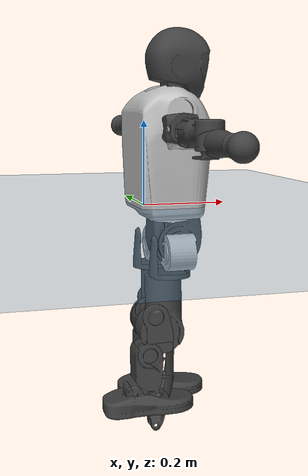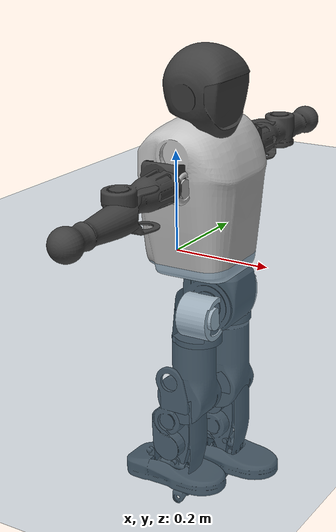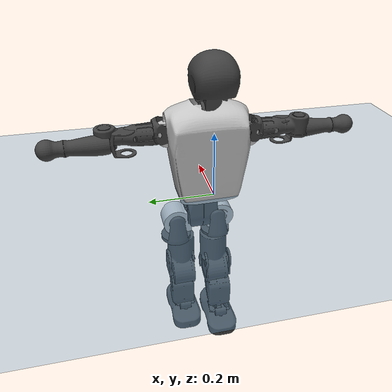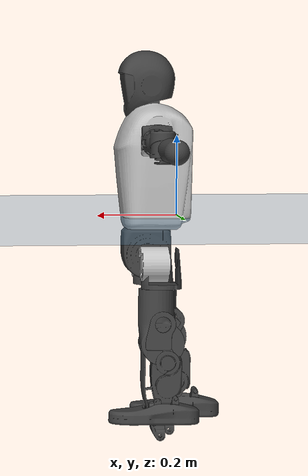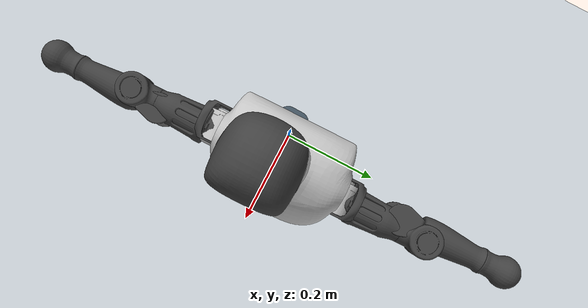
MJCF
<mujoco model="T1">
  <compiler angle="radian" assetdir="assets" balanceinertia="true" inertiafromgeom="false"/>

  <option timestep="0.005" density="1.2" viscosity="2e-05"/>

  <size nkey="1"/>

  <visual>
    <quality shadowsize="8192"/>
    <map shadowclip="0.5"/>
  </visual>

  <default>
    <default class="/">
      <joint armature="0.01" damping="0.01" frictionloss="0.1"/>
      <geom contype="0" conaffinity="0" group="1" solref="-1000 -80"/>
      <site size="0.01 0.005 0.005" group="5"/>
      <general forcelimited="true" biastype="affine" gainprm="25" biasprm="0 -25 -0.6"/>
      <default class="t1">
        <geom rgba="0.25 0.25 0.25 1"/>
        <default class="visual">
          <geom type="mesh" group="2"/>
        </default>
        <default class="collision">
          <geom group="3"/>
        </default>
        <default class="foot">
          <geom size="0.1115 0.05 0.015" type="box" condim="6" group="4" priority="1" solimp="0.015 1 0.015"/>
        </default>
        <default class="reward_collision_sphere">
          <geom group="5" rgba="1 0 0 1"/>
        </default>
      </default>
    </default>
  </default>

  <asset>
    <texture type="skybox" colorspace="auto" name="//unnamed_texture_0" builtin="gradient" rgb1="0.95 0.95 0.95" rgb2="0.95 0.95 0.95" width="100" height="600"/>
    <texture type="2d" colorspace="auto" name="texplane" builtin="checker" rgb1="0.345 0.575 0.748" rgb2="0.345 0.575 0.748" markrgb="1 1 1" width="512" height="512"/>
    <material name="MatPlane" class="/" texture="texplane" texuniform="true" texrepeat="2 2" specular="0.9"/>
    <mesh name="Trunk" class="/" file="Trunk.stl"/>
    <mesh name="H1" class="/" file="H1.stl"/>
    <mesh name="H2" class="/" file="H2.stl"/>
    <mesh name="AL1" class="/" file="AL1.stl"/>
    <mesh name="AL2" class="/" file="AL2.stl"/>
    <mesh name="AL3" class="/" file="AL3.stl"/>
    <mesh name="left_hand_link" class="/" file="left_hand_link.stl"/>
    <mesh name="AR1" class="/" file="AR1.stl"/>
    <mesh name="AR2" class="/" file="AR2.stl"/>
    <mesh name="AR3" class="/" file="AR3.stl"/>
    <mesh name="right_hand_link" class="/" file="right_hand_link.stl"/>
    <mesh name="Waist" class="/" file="Waist.stl"/>
    <mesh name="Hip_Pitch_Left" class="/" file="Hip_Pitch_Left.stl"/>
    <mesh name="Hip_Roll_Left" class="/" file="Hip_Roll_Left.stl"/>
    <mesh name="Hip_Yaw_Left" class="/" file="Hip_Yaw_Left.stl"/>
    <mesh name="Shank_Left" class="/" file="Shank_Left.stl"/>
    <mesh name="Ankle_Cross_Left" class="/" file="Ankle_Cross_Left.stl"/>
    <mesh name="left_foot_link" class="/" file="left_foot_link.stl"/>
    <mesh name="Hip_Pitch_Right" class="/" file="Hip_Pitch_Right.stl"/>
    <mesh name="Hip_Roll_Right" class="/" file="Hip_Roll_Right.stl"/>
    <mesh name="Hip_Yaw_Right" class="/" file="Hip_Yaw_Right.stl"/>
    <mesh name="Shank_Right" class="/" file="Shank_Right.stl"/>
    <mesh name="Ankle_Cross_Right" class="/" file="Ankle_Cross_Right.stl"/>
    <mesh name="right_foot_link" class="/" file="right_foot_link.stl"/>
  </asset>

  <worldbody>
    <geom name="floor" class="/" size="100 100 0.125" type="plane" group="0" material="MatPlane"/>
    <light name="toplight_shadow" class="/" pos="0 0 5" dir="0.0990148 0.0990148 -0.990148" type="directional" ambient="0.04 0.04 0.04" diffuse="0.55 0.55 0.55" specular="0.12 0.12 0.12"/>
    <light name="toplight_fill" class="/" pos="0 0 5" dir="0.0990148 0.0990148 -0.990148" type="directional" castshadow="false" ambient="0.04 0.04 0.04" diffuse="0.3 0.3 0.3" specular="0.08 0.08 0.08"/>
    <body name="trunk" childclass="t1" pos="0.00361952 0.0107414 0.002755" quat="0.999966 0.00035784 -0.00407529 0.00718684">
      <inertial pos="0.070182 0.01441 0.0892112" quat="0.999831 0.0135967 -0.000894511 0.012301" mass="7.35554" diaginertia="0.104577 0.0148834 0.0153955"/>
      <joint name="//unnamed_joint_0" type="free" armature="0" damping="0" frictionloss="0"/>
      <geom name="//unnamed_geom_1" class="visual" rgba="0.76 0.76 0.76 1" mesh="Trunk"/>
      <geom name="//unnamed_geom_2" class="collision" size="0.0620201 0.0826935 0.12404" pos="0.0612638 0 0.0900609" type="box"/>
      <geom name="//unnamed_geom_3" class="reward_collision_sphere" size="0.0950975" pos="0.0612638 0 0.0750508"/>
      <geom name="//unnamed_geom_4" class="reward_collision_sphere" size="0.012404" pos="0.0612638 0.0602849 0"/>
      <geom name="//unnamed_geom_5" class="reward_collision_sphere" size="0.012404" pos="0.0612638 -0.0602849 0"/>
      <geom name="//unnamed_geom_6" class="reward_collision_sphere" size="0.012404" pos="0.0612638 0.075888 0.135091"/>
      <geom name="//unnamed_geom_7" class="reward_collision_sphere" size="0.012404" pos="0.0612638 -0.075888 0.135091"/>
      <site name="imu" pos="-0.0650052 -0.0348085 0.0651591" size="0.00826935"/>
      <camera name="track" pos="0 -1.41847 0" quat="0.707107 0.707107 0 0" mode="trackcom"/>
      <camera name="ego_camera" pos="0.12457 0 0.315213" quat="-0.5 -0.5 0.5 0.5"/>
      <body name="H1" pos="0.0727242 -0.010467 0.174806" quat="0.999989 0.00406755 0.00208215 -0.0013726">
        <inertial pos="0.010756 -0.0183256 0.0328641" quat="0.732138 -0.0769059 0.0264519 0.676283" mass="0.257241" diaginertia="0.000276543 4.3876e-05 5.09107e-05"/>
        <joint name="AAHead_yaw" pos="0 0 0" axis="-0.058063 0.0577927 0.996639" range="-1.41545 1.69153" armature="0.0128483" damping="0" frictionloss="0.0887547"/>
        <geom name="//unnamed_geom_8" class="visual" mesh="H1"/>
        <body name="H2" pos="-0.0127518 -0.0166972 0.0458385" quat="0.999996 0.00296714 -0.000276316 -0.00020888">
          <inertial pos="0.00914787 -0.0149625 0.0766333" quat="0.991709 0.0953983 -0.0477647 -0.0716239" mass="0.369406" diaginertia="0.00192469 0.000327461 0.000427544"/>
          <joint name="Head_pitch" pos="0 0 0" axis="-0.0474817 -0.998857 0.00546644" range="-1.15824 0.351008" armature="0.0152333" damping="0" frictionloss="0.00588522"/>
          <geom name="//unnamed_geom_9" class="visual" mesh="H2"/>
          <geom name="//unnamed_geom_10" class="collision" size="0.0661548" pos="0.0102106 0 0.0825559"/>
          <geom name="//unnamed_geom_11" class="reward_collision_sphere" size="0.0744241" pos="0.0204213 0 0.0750508"/>
        </body>
      </body>
      <body name="AL1" pos="0.0686382 0.0713678 0.181487" quat="1 0.000150652 0.000619301 0.000149213">
        <inertial pos="0.0161989 0.0270487 0.00661504" quat="0.488828 0.492156 -0.52164 0.49671" mass="0.332039" diaginertia="0.00158425 0.000251622 8.77721e-05"/>
        <joint name="Left_Shoulder_Pitch" pos="0 0 0" axis="-0.0755113 0.9964 -0.0385348" range="-3.34636 1.43708" armature="0.0106894" damping="0" frictionloss="0.0737806"/>
        <geom name="//unnamed_geom_12" class="visual" rgba="0.76 0.76 0.76 1" mesh="AL1"/>
        <body name="AL2" pos="-0.00494429 0.0295637 0.0130945" quat="1 -7.45115e-05 0.000136228 -4.12309e-05">
          <inertial pos="-0.0069808 0.0377927 0.0148577" quat="0.521862 0.472828 -0.523176 0.479979" mass="0.0773758" diaginertia="0.000434706 6.1192e-05 4.03161e-05"/>
          <joint name="Left_Shoulder_Roll" pos="0 0 0" axis="-0.998601 -0.0527902 0.00312543" range="-1.50737 1.6316" armature="0.00852756" damping="0.00657771" frictionloss="0.0913029"/>
          <geom name="//unnamed_geom_13" class="visual" mesh="AL2"/>
          <body name="AL3" pos="0.00566647 0.0432827 -0.00955543" quat="0.999998 0.00053644 0.000337955 0.00161229">
            <inertial pos="0.0116094 0.059165 -0.00514449" quat="0.670205 0.738773 0.0110845 -0.070124" mass="0.603768" diaginertia="0.0133563 0.00244316 0.00019615"/>
            <joint name="Left_Elbow_Pitch" pos="0 0 0" axis="-0.0186398 -0.999785 0.009051" range="-2.105 2.38598" armature="0.00880115" damping="0" frictionloss="0.0105593"/>
            <geom name="//unnamed_geom_14" class="visual" mesh="AL3"/>
            <geom name="//unnamed_geom_15" class="collision" size="0.024808 0.0620201" pos="0 0.0354617 0" quat="0.707105 0.707108 0 0" type="cylinder"/>
            <geom name="//unnamed_geom_16" class="reward_collision_sphere" size="0.0297697"/>
            <body name="left_hand_link" pos="-0.0154973 0.0918786 -0.0123849" quat="0.999995 -0.000312961 -0.00217962 -0.00218075">
              <inertial pos="-0.0157604 0.0906321 0.0155964" quat="0.695066 0.717906 0.0360213 -0.0140545" mass="0.180057" diaginertia="0.00889484 0.00134805 4.23583e-05"/>
              <joint name="Left_Elbow_Yaw" pos="0 0 0" axis="0.00253481 0.0224916 0.999744" stiffness="0.0510845" range="-2.46821 0.141626" armature="0.00261894" damping="0" frictionloss="0.0852817"/>
              <geom name="//unnamed_geom_17" class="visual" mesh="left_hand_link"/>
              <geom name="//unnamed_geom_18" class="collision" size="0.024808 0.0723568" pos="0 0.0922004 0" quat="0.707105 0.707108 0 0" type="cylinder"/>
              <geom name="//unnamed_geom_19" class="reward_collision_sphere" size="0.0413467"/>
              <geom name="//unnamed_geom_20" class="reward_collision_sphere" size="0.0289427" pos="0 0.0780157 0"/>
              <geom name="//unnamed_geom_21" class="reward_collision_sphere" size="0.0289427" pos="0 0.152485 0"/>
            </body>
          </body>
        </body>
      </body>
      <body name="AR1" pos="0.0564672 -0.0811631 0.165247" quat="0.999957 0.00847953 -0.000362421 -0.0037633">
        <inertial pos="0.000648008 -0.022332 -0.00988438" quat="0.508033 0.486694 -0.5126 0.492212" mass="0.23381" diaginertia="0.00140172 0.000192652 5.28195e-05"/>
        <joint name="Right_Shoulder_Pitch" pos="0 0 0" axis="0.0303401 -0.999317 0.0210836" range="-1.46757 3.27223" armature="0.0118265" damping="0.015131" frictionloss="0.124006"/>
        <geom name="//unnamed_geom_22" class="visual" rgba="0.76 0.76 0.76 1" mesh="AR1"/>
        <body name="AR2" pos="-0.00860645 -0.027024 0.0168453" quat="0.999973 0.000300641 -0.000383592 0.00731042">
          <inertial pos="0.0131814 -0.0359433 0.0081626" quat="0.474607 0.509645 -0.484882 0.529056" mass="0.105936" diaginertia="0.000517753 6.20976e-05 5.00618e-05"/>
          <joint name="Right_Shoulder_Roll" pos="0 0 0" axis="-0.998029 0.0443 -0.044453" stiffness="0.0627533" range="-1.53476 1.78092" armature="0.00789187" damping="0.0814961" frictionloss="0.10467"/>
          <geom name="//unnamed_geom_23" class="visual" mesh="AR2"/>
          <body name="AR3" pos="0.0119679 -0.040848 -0.0086541" quat="0.99997 -0.0046902 0.00443888 -0.00437215">
            <inertial pos="-0.0185211 -0.0641473 -0.00954667" quat="0.70505 0.70846 0.0308776 0.00589724" mass="0.540898" diaginertia="0.0100702 0.0019872 0.000130549"/>
            <joint name="Right_Elbow_Pitch" pos="0 0 0" axis="0.00772663 0.998396 0.0560868" stiffness="0.0301034" range="-2.08779 2.64855" armature="0.00606514" damping="0.00396933" frictionloss="0.0388149"/>
            <geom name="//unnamed_geom_24" class="visual" mesh="AR3"/>
            <geom name="//unnamed_geom_25" class="collision" size="0.024808 0.0620201" pos="0 -0.0354617 0" quat="0.707105 0.707108 0 0" type="cylinder"/>
            <geom name="//unnamed_geom_26" class="reward_collision_sphere" size="0.0297697"/>
            <body name="right_hand_link" pos="0.0106395 -0.091881 -0.0152347" quat="0.999973 -0.000432175 -0.00439224 -0.00585443">
              <inertial pos="-0.0174934 -0.0863335 0.0161857" quat="0.701813 0.712323 0.00404873 0.00617036" mass="0.204423" diaginertia="0.0137138 0.00206763 4.97438e-05"/>
              <joint name="Right_Elbow_Yaw" pos="0 0 0" axis="0.00750396 -0.00863136 0.999935" stiffness="0.0314385" range="-0.067787 2.75116" armature="0.0115362" damping="0" frictionloss="0.0776343"/>
              <geom name="//unnamed_geom_27" class="visual" mesh="right_hand_link"/>
              <geom name="//unnamed_geom_28" class="collision" size="0.024808 0.0723568" pos="0 -0.0922004 0" quat="0.707105 0.707108 0 0" type="cylinder"/>
              <geom name="//unnamed_geom_29" class="reward_collision_sphere" size="0.0413467"/>
              <geom name="//unnamed_geom_30" class="reward_collision_sphere" size="0.0289427" pos="0 -0.0780157 0"/>
              <geom name="//unnamed_geom_31" class="reward_collision_sphere" size="0.0289427" pos="0 -0.152485 0"/>
            </body>
          </body>
        </body>
      </body>
      <body name="Waist" pos="0.0766736 0.0158082 -0.0975868" quat="1 7.61523e-05 -0.000417684 -0.000389912">
        <inertial pos="-0.00456632 -0.0143408 0.0111517" quat="0.992283 -0.0207734 -0.12011 0.0227412" mass="1.99048" diaginertia="0.00753988 0.00124947 0.00152544"/>
        <joint name="Waist" pos="0 0 0" axis="-0.0119343 0.0428673 0.999009" stiffness="0.0488608" range="-1.36908 1.75923" armature="0.0068748" damping="0.0974487" frictionloss="0.0344992"/>
        <geom name="//unnamed_geom_32" class="visual" mesh="Waist"/>
        <body name="Hip_Pitch_Left" pos="-0.0116611 0.0832332 0.000216516" quat="0.999999 0.000681869 0.000814142 -0.000472477">
          <inertial pos="0.0104363 -0.0103829 0.00235761" quat="0.972881 0.226145 0.0283982 -0.0394229" mass="0.615556" diaginertia="0.00228338 0.000296071 0.000338221"/>
          <joint name="Left_Hip_Pitch" pos="0 0 0" axis="-0.00944941 0.998863 -0.046727" range="-1.92233 1.26301" armature="0.0118572" damping="0.0736988" frictionloss="0.070816"/>
          <geom name="//unnamed_geom_33" class="visual" rgba="0.76 0.76 0.76 1" mesh="Hip_Pitch_Left"/>
          <body name="Hip_Roll_Left" pos="-0.0160415 0.00353561 -0.0028424" quat="0.999997 0.00167175 -0.00107396 -0.00173326">
            <inertial pos="0.00800937 0.00051887 -0.025476" quat="0.714936 -0.0275264 -0.0158152 0.698469" mass="0.157284" diaginertia="0.00127804 0.000260413 0.000118665"/>
            <joint name="Left_Hip_Roll" pos="0 0 0" axis="-0.998765 -0.00972224 -0.0487226" stiffness="0.0801776" range="-1.37454 -0.129887" armature="0.00648608" damping="0" frictionloss="0.0619513"/>
            <geom name="//unnamed_geom_34" class="visual" mesh="Hip_Roll_Left"/>
            <geom name="//unnamed_geom_35" class="reward_collision_sphere" size="0.0454814"/>
            <body name="Hip_Yaw_Left" pos="0.0081678 -0.0169645 -0.0787251" quat="1 -1.17165e-05 -1.41473e-05 4.88916e-05">
              <inertial pos="0.00397431 0.00331638 -0.075882" quat="0.67665 0.0277121 -0.0679775 0.732636" mass="1.24997" diaginertia="0.0221168 0.00478333 0.000463327"/>
              <joint name="Left_Hip_Yaw" pos="0 0 0" axis="0.000536187 0.00541343 -0.999985" stiffness="0.00928269" range="-0.892427 0.632465" armature="0.00288508" damping="0.107508" frictionloss="0.0754409"/>
              <geom name="//unnamed_geom_36" class="visual" mesh="Hip_Yaw_Left"/>
              <geom name="//unnamed_geom_37" class="collision" size="0.0413467 0.0661548" type="cylinder"/>
              <body name="Shank_Left" pos="-0.0125759 0.00530889 -0.0847423" quat="0.999987 -0.00335345 -0.00317041 0.00229626">
                <inertial pos="-0.00623867 0.00400656 -0.0784265" quat="0.997006 -0.00720351 -0.0540811 0.0547933" mass="0.904338" diaginertia="0.0360268 0.00795102 0.000589338"/>
                <joint name="Left_Knee_Pitch" pos="0 0 0" axis="-0.00252962 0.999993 -0.00272554" range="-0.231751 2.31499" armature="0.00927125" damping="0.0443736" frictionloss="0.115829"/>
                <geom name="//unnamed_geom_38" class="visual" mesh="Shank_Left"/>
                <geom name="//unnamed_geom_39" class="collision" size="0.0413467 0.0620201" pos="0 0 -0.0900609" type="cylinder"/>
                <geom name="//unnamed_geom_40" class="reward_collision_sphere" size="0.0537508"/>
                <body name="Ankle_Cross_Left" pos="0.00744148 0.00611991 -0.196133" quat="0.999994 -0.00132527 -0.00211348 -0.00253251">
                  <inertial pos="0.0127548 -0.016544 -0.0059203" quat="0.440502 0.546345 0.557958 0.442886" mass="0.0473043" diaginertia="2.71658e-05 5.4728e-06 2.54356e-06"/>
                  <joint name="Left_Ankle_Pitch" pos="0 0 0" axis="0.057925 0.997296 0.0452198" range="-0.622323 0.209892" armature="0.0144961" damping="0" frictionloss="0.0348144"/>
                  <geom name="//unnamed_geom_41" class="visual" mesh="Ankle_Cross_Left"/>
                  <body name="left_foot_link" pos="-0.00272728 -0.0119452 -0.0234066" quat="0.999961 0.00771693 0.00413311 0.000917076">
                    <inertial pos="0.0162336 -0.00175922 0.00229218" quat="-0.0129816 0.586061 -0.0335029 0.80947" mass="0.468839" diaginertia="0.00269258 0.00041068 0.000448318"/>
                    <joint name="Left_Ankle_Roll" pos="0 0 0" axis="-0.999985 0.00374791 0.00394297" stiffness="0.0767654" range="-0.122173 0.773378" armature="0.00304238" damping="0.0179811" frictionloss="0.15028"/>
                    <geom name="//unnamed_geom_42" class="visual" mesh="left_foot_link"/>
                    <geom name="left_foot" class="foot" size="0.105574 0.0607292 0.0138894" pos="0.0102106 0 -0.0112576"/>
                    <geom name="//unnamed_geom_44" class="reward_collision_sphere" size="0.0430006" pos="0.0102106 0 -0.0112576"/>
                    <geom name="//unnamed_geom_45" class="reward_collision_sphere" size="0.024808" pos="0.097001 -0.0163124 -0.0112576"/>
                    <geom name="//unnamed_geom_46" class="reward_collision_sphere" size="0.024808" pos="-0.0714744 -0.0163124 -0.0112576"/>
                    <site name="left_foot" class="foot" pos="0.0102106 0 -0.0112576" size="0.00826935"/>
                  </body>
                </body>
              </body>
            </body>
          </body>
        </body>
        <body name="Hip_Pitch_Right" pos="-0.00471577 -0.0616015 0.000959083" quat="0.99997 -0.00580921 0.000114912 -0.00513284">
          <inertial pos="-0.00926463 0.0191753 -0.0255959" quat="0.967768 -0.251124 0.0183013 0.00512235" mass="0.563435" diaginertia="0.00185414 0.000195755 0.000265621"/>
          <joint name="Right_Hip_Pitch" pos="0 0 0" axis="-0.00304626 -0.999972 0.00687804" stiffness="0.0222225" range="-1.38925 1.69789" armature="0.00233273" damping="0" frictionloss="0.122913"/>
          <geom name="//unnamed_geom_47" class="visual" rgba="0.76 0.76 0.76 1" mesh="Hip_Pitch_Right"/>
          <body name="Hip_Roll_Right" pos="-0.0172577 0.0152836 -0.00306125" quat="0.999996 -0.00209203 0.00157193 -0.000989068">
            <inertial pos="-0.00740248 -0.00915029 -0.0536544" quat="0.713217 0.00893961 0.00131688 0.700885" mass="0.147609" diaginertia="0.00164359 0.000192206 0.000108132"/>
            <joint name="Right_Hip_Roll" pos="0 0 0" axis="-0.998785 -0.0446177 0.0209197" range="-0.217081 1.92607" armature="0.0064022" damping="0.0947138" frictionloss="0.153463"/>
            <geom name="//unnamed_geom_48" class="visual" mesh="Hip_Roll_Right"/>
            <geom name="//unnamed_geom_49" class="reward_collision_sphere" size="0.0454814"/>
            <body name="Hip_Yaw_Right" pos="-0.0167676 0.010439 -0.0731343" quat="0.999979 0.000233525 -0.00626565 0.00191914">
              <inertial pos="-0.00156473 0.0126047 -0.0796579" quat="0.747908 -0.0281555 -0.107498 0.654434" mass="1.09422" diaginertia="0.0353023 0.00392935 0.00076114"/>
              <joint name="Right_Hip_Yaw" pos="0 0 0" axis="-0.0671856 0.0618169 -0.995824" range="-0.966105 1.05566" armature="0.0147126" damping="0.0275908" frictionloss="0.063875"/>
              <geom name="//unnamed_geom_50" class="visual" mesh="Hip_Yaw_Right"/>
              <geom name="//unnamed_geom_51" class="collision" size="0.0413467 0.0661548" type="cylinder"/>
              <body name="Shank_Right" pos="-0.0312838 -0.00517582 -0.0933459" quat="0.999982 0.00351922 0.00119671 -0.00471563">
                <inertial pos="-0.0168939 -0.00348829 -0.0989785" quat="0.997579 0.0247617 0.0568418 -0.0315094" mass="1.27231" diaginertia="0.0358283 0.00718879 0.000444155"/>
                <joint name="Right_Knee_Pitch" pos="0 0 0" axis="0.00678102 -0.999953 0.00692539" stiffness="0.0870119" range="-2.30792 -0.253879" armature="0.00804456" damping="0" frictionloss="0.0992823"/>
                <geom name="//unnamed_geom_52" class="visual" mesh="Shank_Right"/>
                <geom name="//unnamed_geom_53" class="collision" size="0.0413467 0.0620201" pos="0 0 -0.0900609" type="cylinder"/>
                <geom name="//unnamed_geom_54" class="reward_collision_sphere" size="0.0537508"/>
                <body name="Ankle_Cross_Right" pos="-0.00823945 -0.00372598 -0.197572" quat="0.999971 0.00563963 0.000834218 -0.00513293">
                  <inertial pos="0.000718591 -0.0143176 -0.00368484" quat="0.44333 0.551041 0.550631 0.443416" mass="0.0407931" diaginertia="4.00602e-05 4.69623e-06 3.19211e-06"/>
                  <joint name="Right_Ankle_Pitch" pos="0 0 0" axis="-0.058562 -0.997905 -0.0274854" range="0.0232538 0.923776" armature="0.00748516" damping="0.00982995" frictionloss="0.106454"/>
                  <geom name="//unnamed_geom_55" class="visual" mesh="Ankle_Cross_Right"/>
                  <body name="right_foot_link" pos="-0.0141417 0.00444051 -0.0154056" quat="0.999999 -0.000684118 -0.00047974 -0.00127036">
                    <inertial pos="-0.00110638 -0.0143019 -0.00793432" quat="-0.0518034 0.617169 -0.0112079 0.785044" mass="0.241832" diaginertia="0.00266603 0.000344599 0.000379162"/>
                    <joint name="Right_Ankle_Roll" pos="0 0 0" axis="-0.999316 0.0349248 0.0121446" range="-0.316976 0.669844" armature="0.00584113" damping="0.0110839" frictionloss="0.155131"/>
                    <geom name="//unnamed_geom_56" class="visual" mesh="right_foot_link"/>
                    <geom name="right_foot" class="foot" size="0.144534 0.0288816 0.0124863" pos="0.0102106 0 -0.0112576"/>
                    <geom name="//unnamed_geom_58" class="reward_collision_sphere" size="0.0330774"/>
                    <geom name="//unnamed_geom_59" class="reward_collision_sphere" size="0.024808" pos="0.0102106 0 -0.0112576"/>
                    <geom name="//unnamed_geom_60" class="reward_collision_sphere" size="0.024808" pos="0.097001 0.0163124 -0.0112576"/>
                    <geom name="//unnamed_geom_61" class="reward_collision_sphere" size="0.024808" pos="-0.0714744 0.0163124 -0.0112576"/>
                    <site name="right_foot" class="foot" pos="0.0102106 0 -0.0112576" size="0.00826935"/>
                  </body>
                </body>
              </body>
            </body>
          </body>
        </body>
      </body>
    </body>
  </worldbody>

  <contact>
    <pair class="/" geom1="floor" geom2="left_foot" name="//unnamed_contact_0"/>
    <pair class="/" geom1="floor" geom2="right_foot" name="//unnamed_contact_1"/>
  </contact>

  <actuator>
    <general name="AAHead_yaw" class="/" joint="AAHead_yaw" forcerange="-7.57848 7.57848" gainprm="29.8745" biasprm="0 -29.8745 -0.354746"/>
    <general name="Head_pitch" class="/" joint="Head_pitch" forcerange="-4.00248 4.00248" gainprm="29.8745" biasprm="0 -29.8745 -0.354746"/>
    <general name="Left_Shoulder_Pitch" class="/" joint="Left_Shoulder_Pitch" forcerange="-25.3299 25.3299" gainprm="29.8745" biasprm="0 -29.8745 -0.354746"/>
    <general name="Left_Shoulder_Roll" class="/" joint="Left_Shoulder_Roll" forcerange="-15.6698 15.6698" gainprm="29.8745" biasprm="0 -29.8745 -0.354746"/>
    <general name="Left_Elbow_Pitch" class="/" joint="Left_Elbow_Pitch" forcerange="-20.8468 20.8468" gainprm="29.8745" biasprm="0 -29.8745 -0.354746"/>
    <general name="Left_Elbow_Yaw" class="/" joint="Left_Elbow_Yaw" forcerange="-16.5723 16.5723" gainprm="29.8745" biasprm="0 -29.8745 -0.354746"/>
    <general name="Right_Shoulder_Pitch" class="/" joint="Right_Shoulder_Pitch" forcerange="-18.4835 18.4835" gainprm="29.8745" biasprm="0 -29.8745 -0.354746"/>
    <general name="Right_Shoulder_Roll" class="/" joint="Right_Shoulder_Roll" forcerange="-13.0932 13.0932" gainprm="29.8745" biasprm="0 -29.8745 -0.354746"/>
    <general name="Right_Elbow_Pitch" class="/" joint="Right_Elbow_Pitch" forcerange="-21.2336 21.2336" gainprm="29.8745" biasprm="0 -29.8745 -0.354746"/>
    <general name="Right_Elbow_Yaw" class="/" joint="Right_Elbow_Yaw" forcerange="-21.1698 21.1698" gainprm="29.8745" biasprm="0 -29.8745 -0.354746"/>
    <general name="Waist" class="/" joint="Waist" forcerange="-35.2218 35.2218" gainprm="29.8745" biasprm="0 -29.8745 -0.354746"/>
    <general name="Left_Hip_Pitch" class="/" joint="Left_Hip_Pitch" forcerange="-42.9957 42.9957" gainprm="29.8745" biasprm="0 -29.8745 -0.354746"/>
    <general name="Left_Hip_Roll" class="/" joint="Left_Hip_Roll" forcerange="-34.8958 34.8958" gainprm="29.8745" biasprm="0 -29.8745 -0.354746"/>
    <general name="Left_Hip_Yaw" class="/" joint="Left_Hip_Yaw" forcerange="-35.0695 35.0695" gainprm="29.8745" biasprm="0 -29.8745 -0.354746"/>
    <general name="Left_Knee_Pitch" class="/" joint="Left_Knee_Pitch" forcerange="-31.5859 31.5859" gainprm="29.8745" biasprm="0 -29.8745 -0.354746"/>
    <general name="Left_Ankle_Pitch" class="/" joint="Left_Ankle_Pitch" forcerange="-5.91737 5.91737" gainprm="29.8745" biasprm="0 -29.8745 -0.354746"/>
    <general name="Left_Ankle_Roll" class="/" joint="Left_Ankle_Roll" forcerange="-19.7686 19.7686" gainprm="29.8745" biasprm="0 -29.8745 -0.354746"/>
    <general name="Right_Hip_Pitch" class="/" joint="Right_Hip_Pitch" forcerange="-32.4675 32.4675" gainprm="29.8745" biasprm="0 -29.8745 -0.354746"/>
    <general name="Right_Hip_Roll" class="/" joint="Right_Hip_Roll" forcerange="-9.98351 9.98351" gainprm="29.8745" biasprm="0 -29.8745 -0.354746"/>
    <general name="Right_Hip_Yaw" class="/" joint="Right_Hip_Yaw" forcerange="-37.6436 37.6436" gainprm="29.8745" biasprm="0 -29.8745 -0.354746"/>
    <general name="Right_Knee_Pitch" class="/" joint="Right_Knee_Pitch" forcerange="-73.2187 73.2187" gainprm="29.8745" biasprm="0 -29.8745 -0.354746"/>
    <general name="Right_Ankle_Pitch" class="/" joint="Right_Ankle_Pitch" forcerange="-18.7165 18.7165" gainprm="29.8745" biasprm="0 -29.8745 -0.354746"/>
    <general name="Right_Ankle_Roll" class="/" joint="Right_Ankle_Roll" forcerange="-5.49578 5.49578" gainprm="29.8745" biasprm="0 -29.8745 -0.354746"/>
  </actuator>

  <sensor>
    <gyro site="imu" name="imu_angular_velocity"/>
    <velocimeter site="imu" name="imu_linear_velocity"/>
    <framelinvel objtype="site" objname="left_foot" name="left_foot_global_linear_velocity"/>
    <framelinvel objtype="site" objname="right_foot" name="right_foot_global_linear_velocity"/>
  </sensor>

  <keyframe>
    <key name="home" qpos="0 0 0.6385 1 0 0 0 0 0 0 1.4 0 -0.4 0 -1.4 0 0.4 0 -0.4 0 0 0.8 -0.4 0 0.4 0 0 -0.8 0.4 0"/>
  </keyframe>
</mujoco>
